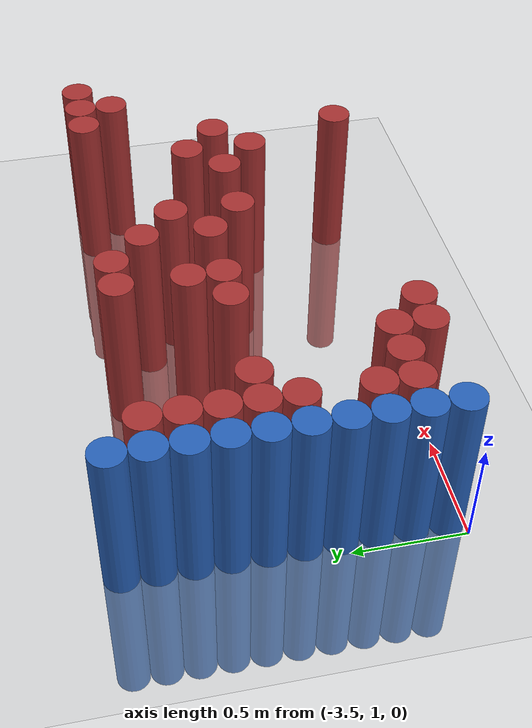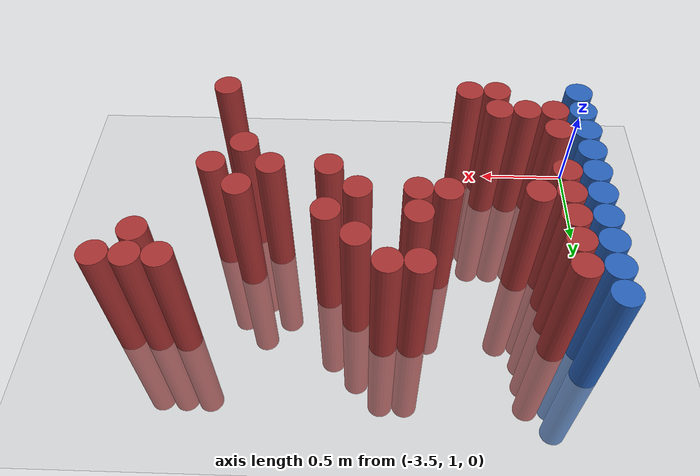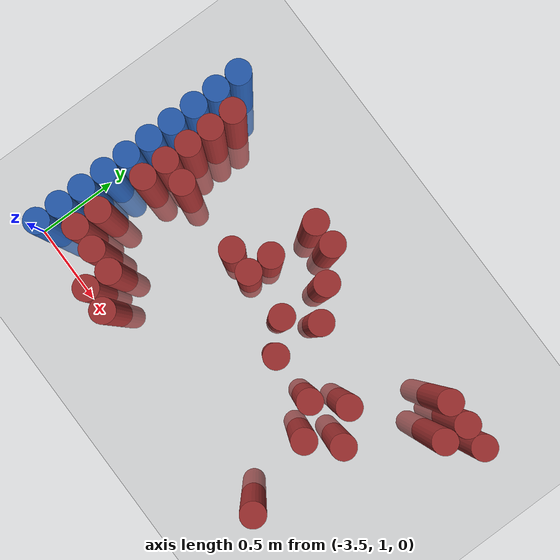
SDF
<sdf version="1.6">
 <world name="default">
  <model name="ground_plane">
   <static>1</static>
   <link name="link">
    <collision name="collision">
     <geometry><plane><normal>0 0 1</normal><size>100 100</size></plane></geometry>
     <surface><friction><ode><mu>100</mu><mu2>50</mu2></ode></friction></surface>
    </collision>
    <visual name="visual">
     <cast_shadows>0</cast_shadows>
     <geometry><plane><normal>0 0 1</normal><size>100 100</size></plane></geometry>
     <material>
      <script><uri>file://media/materials/scripts/gazebo.material</uri><name>Gazebo/Grey</name></script>
     </material>
    </visual>
   </link>
  </model>
  <model name="unit_cylinder_129">
   <static>1</static>
   <pose>-3.425000 1.075000 0.000000 0.000000 0.000000 0.000000</pose>
   <link name="link">
    <inertial>
     <mass>1</mass>
     <inertia><ixx>0.145833</ixx><ixy>0</ixy><ixz>0</ixz><iyy>0.145833</iyy><iyz>0</iyz><izz>0.125</izz></inertia>
    </inertial>
    <collision name="collision">
     <geometry><cylinder><radius>0.075000</radius><length>1.5</length></cylinder></geometry>
    </collision>
    <visual name="visual">
     <geometry><cylinder><radius>0.075000</radius><length>1.5</length></cylinder></geometry>
     <material>
      <ambient>0.152000 0.379000 0.720000 1</ambient>
      <diffuse>0.152000 0.379000 0.720000 1</diffuse>
     </material>
     <material>
      <script><name>Gazebo/Grey</name><uri>file://media/materials/scripts/gazebo.material</uri></script>
     </material>
    </visual>
   </link>
  </model>
  <model name="unit_cylinder_131">
   <static>1</static>
   <pose>-3.425000 1.225000 0.000000 0.000000 0.000000 0.000000</pose>
   <link name="link">
    <inertial>
     <mass>1</mass>
     <inertia><ixx>0.145833</ixx><ixy>0</ixy><ixz>0</ixz><iyy>0.145833</iyy><iyz>0</iyz><izz>0.125</izz></inertia>
    </inertial>
    <collision name="collision">
     <geometry><cylinder><radius>0.075000</radius><length>1.5</length></cylinder></geometry>
    </collision>
    <visual name="visual">
     <geometry><cylinder><radius>0.075000</radius><length>1.5</length></cylinder></geometry>
     <material>
      <ambient>0.152000 0.379000 0.720000 1</ambient>
      <diffuse>0.152000 0.379000 0.720000 1</diffuse>
     </material>
     <material>
      <script><name>Gazebo/Grey</name><uri>file://media/materials/scripts/gazebo.material</uri></script>
     </material>
    </visual>
   </link>
  </model>
  <model name="unit_cylinder_133">
   <static>1</static>
   <pose>-3.425000 1.375000 0.000000 0.000000 0.000000 0.000000</pose>
   <link name="link">
    <inertial>
     <mass>1</mass>
     <inertia><ixx>0.145833</ixx><ixy>0</ixy><ixz>0</ixz><iyy>0.145833</iyy><iyz>0</iyz><izz>0.125</izz></inertia>
    </inertial>
    <collision name="collision">
     <geometry><cylinder><radius>0.075000</radius><length>1.5</length></cylinder></geometry>
    </collision>
    <visual name="visual">
     <geometry><cylinder><radius>0.075000</radius><length>1.5</length></cylinder></geometry>
     <material>
      <ambient>0.152000 0.379000 0.720000 1</ambient>
      <diffuse>0.152000 0.379000 0.720000 1</diffuse>
     </material>
     <material>
      <script><name>Gazebo/Grey</name><uri>file://media/materials/scripts/gazebo.material</uri></script>
     </material>
    </visual>
   </link>
  </model>
  <model name="unit_cylinder_135">
   <static>1</static>
   <pose>-3.425000 1.525000 0.000000 0.000000 0.000000 0.000000</pose>
   <link name="link">
    <inertial>
     <mass>1</mass>
     <inertia><ixx>0.145833</ixx><ixy>0</ixy><ixz>0</ixz><iyy>0.145833</iyy><iyz>0</iyz><izz>0.125</izz></inertia>
    </inertial>
    <collision name="collision">
     <geometry><cylinder><radius>0.075000</radius><length>1.5</length></cylinder></geometry>
    </collision>
    <visual name="visual">
     <geometry><cylinder><radius>0.075000</radius><length>1.5</length></cylinder></geometry>
     <material>
      <ambient>0.152000 0.379000 0.720000 1</ambient>
      <diffuse>0.152000 0.379000 0.720000 1</diffuse>
     </material>
     <material>
      <script><name>Gazebo/Grey</name><uri>file://media/materials/scripts/gazebo.material</uri></script>
     </material>
    </visual>
   </link>
  </model>
  <model name="unit_cylinder_137">
   <static>1</static>
   <pose>-3.425000 1.675000 0.000000 0.000000 0.000000 0.000000</pose>
   <link name="link">
    <inertial>
     <mass>1</mass>
     <inertia><ixx>0.145833</ixx><ixy>0</ixy><ixz>0</ixz><iyy>0.145833</iyy><iyz>0</iyz><izz>0.125</izz></inertia>
    </inertial>
    <collision name="collision">
     <geometry><cylinder><radius>0.075000</radius><length>1.5</length></cylinder></geometry>
    </collision>
    <visual name="visual">
     <geometry><cylinder><radius>0.075000</radius><length>1.5</length></cylinder></geometry>
     <material>
      <ambient>0.152000 0.379000 0.720000 1</ambient>
      <diffuse>0.152000 0.379000 0.720000 1</diffuse>
     </material>
     <material>
      <script><name>Gazebo/Grey</name><uri>file://media/materials/scripts/gazebo.material</uri></script>
     </material>
    </visual>
   </link>
  </model>
  <model name="unit_cylinder_139">
   <static>1</static>
   <pose>-3.425000 1.825000 0.000000 0.000000 0.000000 0.000000</pose>
   <link name="link">
    <inertial>
     <mass>1</mass>
     <inertia><ixx>0.145833</ixx><ixy>0</ixy><ixz>0</ixz><iyy>0.145833</iyy><iyz>0</iyz><izz>0.125</izz></inertia>
    </inertial>
    <collision name="collision">
     <geometry><cylinder><radius>0.075000</radius><length>1.5</length></cylinder></geometry>
    </collision>
    <visual name="visual">
     <geometry><cylinder><radius>0.075000</radius><length>1.5</length></cylinder></geometry>
     <material>
      <ambient>0.152000 0.379000 0.720000 1</ambient>
      <diffuse>0.152000 0.379000 0.720000 1</diffuse>
     </material>
     <material>
      <script><name>Gazebo/Grey</name><uri>file://media/materials/scripts/gazebo.material</uri></script>
     </material>
    </visual>
   </link>
  </model>
  <model name="unit_cylinder_141">
   <static>1</static>
   <pose>-3.425000 1.975000 0.000000 0.000000 0.000000 0.000000</pose>
   <link name="link">
    <inertial>
     <mass>1</mass>
     <inertia><ixx>0.145833</ixx><ixy>0</ixy><ixz>0</ixz><iyy>0.145833</iyy><iyz>0</iyz><izz>0.125</izz></inertia>
    </inertial>
    <collision name="collision">
     <geometry><cylinder><radius>0.075000</radius><length>1.5</length></cylinder></geometry>
    </collision>
    <visual name="visual">
     <geometry><cylinder><radius>0.075000</radius><length>1.5</length></cylinder></geometry>
     <material>
      <ambient>0.152000 0.379000 0.720000 1</ambient>
      <diffuse>0.152000 0.379000 0.720000 1</diffuse>
     </material>
     <material>
      <script><name>Gazebo/Grey</name><uri>file://media/materials/scripts/gazebo.material</uri></script>
     </material>
    </visual>
   </link>
  </model>
  <model name="unit_cylinder_143">
   <static>1</static>
   <pose>-3.425000 2.125000 0.000000 0.000000 0.000000 0.000000</pose>
   <link name="link">
    <inertial>
     <mass>1</mass>
     <inertia><ixx>0.145833</ixx><ixy>0</ixy><ixz>0</ixz><iyy>0.145833</iyy><iyz>0</iyz><izz>0.125</izz></inertia>
    </inertial>
    <collision name="collision">
     <geometry><cylinder><radius>0.075000</radius><length>1.5</length></cylinder></geometry>
    </collision>
    <visual name="visual">
     <geometry><cylinder><radius>0.075000</radius><length>1.5</length></cylinder></geometry>
     <material>
      <ambient>0.152000 0.379000 0.720000 1</ambient>
      <diffuse>0.152000 0.379000 0.720000 1</diffuse>
     </material>
     <material>
      <script><name>Gazebo/Grey</name><uri>file://media/materials/scripts/gazebo.material</uri></script>
     </material>
    </visual>
   </link>
  </model>
  <model name="unit_cylinder_145">
   <static>1</static>
   <pose>-3.425000 2.275000 0.000000 0.000000 0.000000 0.000000</pose>
   <link name="link">
    <inertial>
     <mass>1</mass>
     <inertia><ixx>0.145833</ixx><ixy>0</ixy><ixz>0</ixz><iyy>0.145833</iyy><iyz>0</iyz><izz>0.125</izz></inertia>
    </inertial>
    <collision name="collision">
     <geometry><cylinder><radius>0.075000</radius><length>1.5</length></cylinder></geometry>
    </collision>
    <visual name="visual">
     <geometry><cylinder><radius>0.075000</radius><length>1.5</length></cylinder></geometry>
     <material>
      <ambient>0.152000 0.379000 0.720000 1</ambient>
      <diffuse>0.152000 0.379000 0.720000 1</diffuse>
     </material>
     <material>
      <script><name>Gazebo/Grey</name><uri>file://media/materials/scripts/gazebo.material</uri></script>
     </material>
    </visual>
   </link>
  </model>
  <model name="unit_cylinder_147">
   <static>1</static>
   <pose>-3.425000 2.425000 0.000000 0.000000 0.000000 0.000000</pose>
   <link name="link">
    <inertial>
     <mass>1</mass>
     <inertia><ixx>0.145833</ixx><ixy>0</ixy><ixz>0</ixz><iyy>0.145833</iyy><iyz>0</iyz><izz>0.125</izz></inertia>
    </inertial>
    <collision name="collision">
     <geometry><cylinder><radius>0.075000</radius><length>1.5</length></cylinder></geometry>
    </collision>
    <visual name="visual">
     <geometry><cylinder><radius>0.075000</radius><length>1.5</length></cylinder></geometry>
     <material>
      <ambient>0.152000 0.379000 0.720000 1</ambient>
      <diffuse>0.152000 0.379000 0.720000 1</diffuse>
     </material>
     <material>
      <script><name>Gazebo/Grey</name><uri>file://media/materials/scripts/gazebo.material</uri></script>
     </material>
    </visual>
   </link>
  </model>
  <model name="unit_cylinder_228">
   <static>1</static>
   <pose>-3.425000 1.075000 0.000000 0.000000 0.000000 0.000000</pose>
   <link name="link">
    <inertial>
     <mass>1</mass>
     <inertia><ixx>0.145833</ixx><ixy>0</ixy><ixz>0</ixz><iyy>0.145833</iyy><iyz>0</iyz><izz>0.125</izz></inertia>
    </inertial>
    <collision name="collision">
     <geometry><cylinder><radius>0.075000</radius><length>1.5</length></cylinder></geometry>
    </collision>
    <visual name="visual">
     <geometry><cylinder><radius>0.075000</radius><length>1.5</length></cylinder></geometry>
     <material>
      <ambient>0.152000 0.379000 0.720000 1</ambient>
      <diffuse>0.152000 0.379000 0.720000 1</diffuse>
     </material>
     <material>
      <script><name>Gazebo/Grey</name><uri>file://media/materials/scripts/gazebo.material</uri></script>
     </material>
    </visual>
   </link>
  </model>
  <model name="unit_cylinder_229">
   <static>1</static>
   <pose>-3.425000 1.225000 0.000000 0.000000 0.000000 0.000000</pose>
   <link name="link">
    <inertial>
     <mass>1</mass>
     <inertia><ixx>0.145833</ixx><ixy>0</ixy><ixz>0</ixz><iyy>0.145833</iyy><iyz>0</iyz><izz>0.125</izz></inertia>
    </inertial>
    <collision name="collision">
     <geometry><cylinder><radius>0.075000</radius><length>1.5</length></cylinder></geometry>
    </collision>
    <visual name="visual">
     <geometry><cylinder><radius>0.075000</radius><length>1.5</length></cylinder></geometry>
     <material>
      <ambient>0.152000 0.379000 0.720000 1</ambient>
      <diffuse>0.152000 0.379000 0.720000 1</diffuse>
     </material>
     <material>
      <script><name>Gazebo/Grey</name><uri>file://media/materials/scripts/gazebo.material</uri></script>
     </material>
    </visual>
   </link>
  </model>
  <model name="unit_cylinder_230">
   <static>1</static>
   <pose>-3.425000 1.375000 0.000000 0.000000 0.000000 0.000000</pose>
   <link name="link">
    <inertial>
     <mass>1</mass>
     <inertia><ixx>0.145833</ixx><ixy>0</ixy><ixz>0</ixz><iyy>0.145833</iyy><iyz>0</iyz><izz>0.125</izz></inertia>
    </inertial>
    <collision name="collision">
     <geometry><cylinder><radius>0.075000</radius><length>1.5</length></cylinder></geometry>
    </collision>
    <visual name="visual">
     <geometry><cylinder><radius>0.075000</radius><length>1.5</length></cylinder></geometry>
     <material>
      <ambient>0.152000 0.379000 0.720000 1</ambient>
      <diffuse>0.152000 0.379000 0.720000 1</diffuse>
     </material>
     <material>
      <script><name>Gazebo/Grey</name><uri>file://media/materials/scripts/gazebo.material</uri></script>
     </material>
    </visual>
   </link>
  </model>
  <model name="unit_cylinder_231">
   <static>1</static>
   <pose>-3.425000 1.525000 0.000000 0.000000 0.000000 0.000000</pose>
   <link name="link">
    <inertial>
     <mass>1</mass>
     <inertia><ixx>0.145833</ixx><ixy>0</ixy><ixz>0</ixz><iyy>0.145833</iyy><iyz>0</iyz><izz>0.125</izz></inertia>
    </inertial>
    <collision name="collision">
     <geometry><cylinder><radius>0.075000</radius><length>1.5</length></cylinder></geometry>
    </collision>
    <visual name="visual">
     <geometry><cylinder><radius>0.075000</radius><length>1.5</length></cylinder></geometry>
     <material>
      <ambient>0.152000 0.379000 0.720000 1</ambient>
      <diffuse>0.152000 0.379000 0.720000 1</diffuse>
     </material>
     <material>
      <script><name>Gazebo/Grey</name><uri>file://media/materials/scripts/gazebo.material</uri></script>
     </material>
    </visual>
   </link>
  </model>
  <model name="unit_cylinder_232">
   <static>1</static>
   <pose>-3.425000 1.675000 0.000000 0.000000 0.000000 0.000000</pose>
   <link name="link">
    <inertial>
     <mass>1</mass>
     <inertia><ixx>0.145833</ixx><ixy>0</ixy><ixz>0</ixz><iyy>0.145833</iyy><iyz>0</iyz><izz>0.125</izz></inertia>
    </inertial>
    <collision name="collision">
     <geometry><cylinder><radius>0.075000</radius><length>1.5</length></cylinder></geometry>
    </collision>
    <visual name="visual">
     <geometry><cylinder><radius>0.075000</radius><length>1.5</length></cylinder></geometry>
     <material>
      <ambient>0.152000 0.379000 0.720000 1</ambient>
      <diffuse>0.152000 0.379000 0.720000 1</diffuse>
     </material>
     <material>
      <script><name>Gazebo/Grey</name><uri>file://media/materials/scripts/gazebo.material</uri></script>
     </material>
    </visual>
   </link>
  </model>
  <model name="unit_cylinder_233">
   <static>1</static>
   <pose>-3.425000 1.825000 0.000000 0.000000 0.000000 0.000000</pose>
   <link name="link">
    <inertial>
     <mass>1</mass>
     <inertia><ixx>0.145833</ixx><ixy>0</ixy><ixz>0</ixz><iyy>0.145833</iyy><iyz>0</iyz><izz>0.125</izz></inertia>
    </inertial>
    <collision name="collision">
     <geometry><cylinder><radius>0.075000</radius><length>1.5</length></cylinder></geometry>
    </collision>
    <visual name="visual">
     <geometry><cylinder><radius>0.075000</radius><length>1.5</length></cylinder></geometry>
     <material>
      <ambient>0.152000 0.379000 0.720000 1</ambient>
      <diffuse>0.152000 0.379000 0.720000 1</diffuse>
     </material>
     <material>
      <script><name>Gazebo/Grey</name><uri>file://media/materials/scripts/gazebo.material</uri></script>
     </material>
    </visual>
   </link>
  </model>
  <model name="unit_cylinder_234">
   <static>1</static>
   <pose>-3.425000 1.975000 0.000000 0.000000 0.000000 0.000000</pose>
   <link name="link">
    <inertial>
     <mass>1</mass>
     <inertia><ixx>0.145833</ixx><ixy>0</ixy><ixz>0</ixz><iyy>0.145833</iyy><iyz>0</iyz><izz>0.125</izz></inertia>
    </inertial>
    <collision name="collision">
     <geometry><cylinder><radius>0.075000</radius><length>1.5</length></cylinder></geometry>
    </collision>
    <visual name="visual">
     <geometry><cylinder><radius>0.075000</radius><length>1.5</length></cylinder></geometry>
     <material>
      <ambient>0.152000 0.379000 0.720000 1</ambient>
      <diffuse>0.152000 0.379000 0.720000 1</diffuse>
     </material>
     <material>
      <script><name>Gazebo/Grey</name><uri>file://media/materials/scripts/gazebo.material</uri></script>
     </material>
    </visual>
   </link>
  </model>
  <model name="unit_cylinder_235">
   <static>1</static>
   <pose>-3.425000 2.125000 0.000000 0.000000 0.000000 0.000000</pose>
   <link name="link">
    <inertial>
     <mass>1</mass>
     <inertia><ixx>0.145833</ixx><ixy>0</ixy><ixz>0</ixz><iyy>0.145833</iyy><iyz>0</iyz><izz>0.125</izz></inertia>
    </inertial>
    <collision name="collision">
     <geometry><cylinder><radius>0.075000</radius><length>1.5</length></cylinder></geometry>
    </collision>
    <visual name="visual">
     <geometry><cylinder><radius>0.075000</radius><length>1.5</length></cylinder></geometry>
     <material>
      <ambient>0.152000 0.379000 0.720000 1</ambient>
      <diffuse>0.152000 0.379000 0.720000 1</diffuse>
     </material>
     <material>
      <script><name>Gazebo/Grey</name><uri>file://media/materials/scripts/gazebo.material</uri></script>
     </material>
    </visual>
   </link>
  </model>
  <model name="unit_cylinder_236">
   <static>1</static>
   <pose>-3.425000 2.275000 0.000000 0.000000 0.000000 0.000000</pose>
   <link name="link">
    <inertial>
     <mass>1</mass>
     <inertia><ixx>0.145833</ixx><ixy>0</ixy><ixz>0</ixz><iyy>0.145833</iyy><iyz>0</iyz><izz>0.125</izz></inertia>
    </inertial>
    <collision name="collision">
     <geometry><cylinder><radius>0.075000</radius><length>1.5</length></cylinder></geometry>
    </collision>
    <visual name="visual">
     <geometry><cylinder><radius>0.075000</radius><length>1.5</length></cylinder></geometry>
     <material>
      <ambient>0.152000 0.379000 0.720000 1</ambient>
      <diffuse>0.152000 0.379000 0.720000 1</diffuse>
     </material>
     <material>
      <script><name>Gazebo/Grey</name><uri>file://media/materials/scripts/gazebo.material</uri></script>
     </material>
    </visual>
   </link>
  </model>
  <model name="unit_cylinder_237">
   <static>1</static>
   <pose>-3.425000 2.425000 0.000000 0.000000 0.000000 0.000000</pose>
   <link name="link">
    <inertial>
     <mass>1</mass>
     <inertia><ixx>0.145833</ixx><ixy>0</ixy><ixz>0</ixz><iyy>0.145833</iyy><iyz>0</iyz><izz>0.125</izz></inertia>
    </inertial>
    <collision name="collision">
     <geometry><cylinder><radius>0.075000</radius><length>1.5</length></cylinder></geometry>
    </collision>
    <visual name="visual">
     <geometry><cylinder><radius>0.075000</radius><length>1.5</length></cylinder></geometry>
     <material>
      <ambient>0.152000 0.379000 0.720000 1</ambient>
      <diffuse>0.152000 0.379000 0.720000 1</diffuse>
     </material>
     <material>
      <script><name>Gazebo/Grey</name><uri>file://media/materials/scripts/gazebo.material</uri></script>
     </material>
    </visual>
   </link>
  </model>
  <model name="unit_cylinder_270">
   <static>1</static>
   <pose>-3.275000 1.225000 0.000000 0.000000 0.000000 0.000000</pose>
   <link name="link">
    <inertial>
     <mass>1</mass>
     <inertia><ixx>0.145833</ixx><ixy>0</ixy><ixz>0</ixz><iyy>0.145833</iyy><iyz>0</iyz><izz>0.125</izz></inertia>
    </inertial>
    <collision name="collision">
     <geometry><cylinder><radius>0.075000</radius><length>1.5</length></cylinder></geometry>
    </collision>
    <visual name="visual">
     <geometry><cylinder><radius>0.075000</radius><length>1.5</length></cylinder></geometry>
     <material>
      <ambient>0.648000 0.192000 0.192000 1</ambient>
      <diffuse>0.648000 0.192000 0.192000 1</diffuse>
     </material>
     <material>
      <script><name>Gazebo/Grey</name><uri>file://media/materials/scripts/gazebo.material</uri></script>
     </material>
    </visual>
   </link>
  </model>
  <model name="unit_cylinder_271">
   <static>1</static>
   <pose>-3.275000 1.375000 0.000000 0.000000 0.000000 0.000000</pose>
   <link name="link">
    <inertial>
     <mass>1</mass>
     <inertia><ixx>0.145833</ixx><ixy>0</ixy><ixz>0</ixz><iyy>0.145833</iyy><iyz>0</iyz><izz>0.125</izz></inertia>
    </inertial>
    <collision name="collision">
     <geometry><cylinder><radius>0.075000</radius><length>1.5</length></cylinder></geometry>
    </collision>
    <visual name="visual">
     <geometry><cylinder><radius>0.075000</radius><length>1.5</length></cylinder></geometry>
     <material>
      <ambient>0.648000 0.192000 0.192000 1</ambient>
      <diffuse>0.648000 0.192000 0.192000 1</diffuse>
     </material>
     <material>
      <script><name>Gazebo/Grey</name><uri>file://media/materials/scripts/gazebo.material</uri></script>
     </material>
    </visual>
   </link>
  </model>
  <model name="unit_cylinder_272">
   <static>1</static>
   <pose>-3.275000 1.675000 0.000000 0.000000 0.000000 0.000000</pose>
   <link name="link">
    <inertial>
     <mass>1</mass>
     <inertia><ixx>0.145833</ixx><ixy>0</ixy><ixz>0</ixz><iyy>0.145833</iyy><iyz>0</iyz><izz>0.125</izz></inertia>
    </inertial>
    <collision name="collision">
     <geometry><cylinder><radius>0.075000</radius><length>1.5</length></cylinder></geometry>
    </collision>
    <visual name="visual">
     <geometry><cylinder><radius>0.075000</radius><length>1.5</length></cylinder></geometry>
     <material>
      <ambient>0.648000 0.192000 0.192000 1</ambient>
      <diffuse>0.648000 0.192000 0.192000 1</diffuse>
     </material>
     <material>
      <script><name>Gazebo/Grey</name><uri>file://media/materials/scripts/gazebo.material</uri></script>
     </material>
    </visual>
   </link>
  </model>
  <model name="unit_cylinder_273">
   <static>1</static>
   <pose>-3.275000 1.825000 0.000000 0.000000 0.000000 0.000000</pose>
   <link name="link">
    <inertial>
     <mass>1</mass>
     <inertia><ixx>0.145833</ixx><ixy>0</ixy><ixz>0</ixz><iyy>0.145833</iyy><iyz>0</iyz><izz>0.125</izz></inertia>
    </inertial>
    <collision name="collision">
     <geometry><cylinder><radius>0.075000</radius><length>1.5</length></cylinder></geometry>
    </collision>
    <visual name="visual">
     <geometry><cylinder><radius>0.075000</radius><length>1.5</length></cylinder></geometry>
     <material>
      <ambient>0.648000 0.192000 0.192000 1</ambient>
      <diffuse>0.648000 0.192000 0.192000 1</diffuse>
     </material>
     <material>
      <script><name>Gazebo/Grey</name><uri>file://media/materials/scripts/gazebo.material</uri></script>
     </material>
    </visual>
   </link>
  </model>
  <model name="unit_cylinder_274">
   <static>1</static>
   <pose>-3.275000 1.975000 0.000000 0.000000 0.000000 0.000000</pose>
   <link name="link">
    <inertial>
     <mass>1</mass>
     <inertia><ixx>0.145833</ixx><ixy>0</ixy><ixz>0</ixz><iyy>0.145833</iyy><iyz>0</iyz><izz>0.125</izz></inertia>
    </inertial>
    <collision name="collision">
     <geometry><cylinder><radius>0.075000</radius><length>1.5</length></cylinder></geometry>
    </collision>
    <visual name="visual">
     <geometry><cylinder><radius>0.075000</radius><length>1.5</length></cylinder></geometry>
     <material>
      <ambient>0.648000 0.192000 0.192000 1</ambient>
      <diffuse>0.648000 0.192000 0.192000 1</diffuse>
     </material>
     <material>
      <script><name>Gazebo/Grey</name><uri>file://media/materials/scripts/gazebo.material</uri></script>
     </material>
    </visual>
   </link>
  </model>
  <model name="unit_cylinder_275">
   <static>1</static>
   <pose>-3.275000 2.125000 0.000000 0.000000 0.000000 0.000000</pose>
   <link name="link">
    <inertial>
     <mass>1</mass>
     <inertia><ixx>0.145833</ixx><ixy>0</ixy><ixz>0</ixz><iyy>0.145833</iyy><iyz>0</iyz><izz>0.125</izz></inertia>
    </inertial>
    <collision name="collision">
     <geometry><cylinder><radius>0.075000</radius><length>1.5</length></cylinder></geometry>
    </collision>
    <visual name="visual">
     <geometry><cylinder><radius>0.075000</radius><length>1.5</length></cylinder></geometry>
     <material>
      <ambient>0.648000 0.192000 0.192000 1</ambient>
      <diffuse>0.648000 0.192000 0.192000 1</diffuse>
     </material>
     <material>
      <script><name>Gazebo/Grey</name><uri>file://media/materials/scripts/gazebo.material</uri></script>
     </material>
    </visual>
   </link>
  </model>
  <model name="unit_cylinder_276">
   <static>1</static>
   <pose>-3.275000 2.275000 0.000000 0.000000 0.000000 0.000000</pose>
   <link name="link">
    <inertial>
     <mass>1</mass>
     <inertia><ixx>0.145833</ixx><ixy>0</ixy><ixz>0</ixz><iyy>0.145833</iyy><iyz>0</iyz><izz>0.125</izz></inertia>
    </inertial>
    <collision name="collision">
     <geometry><cylinder><radius>0.075000</radius><length>1.5</length></cylinder></geometry>
    </collision>
    <visual name="visual">
     <geometry><cylinder><radius>0.075000</radius><length>1.5</length></cylinder></geometry>
     <material>
      <ambient>0.648000 0.192000 0.192000 1</ambient>
      <diffuse>0.648000 0.192000 0.192000 1</diffuse>
     </material>
     <material>
      <script><name>Gazebo/Grey</name><uri>file://media/materials/scripts/gazebo.material</uri></script>
     </material>
    </visual>
   </link>
  </model>
  <model name="unit_cylinder_287">
   <static>1</static>
   <pose>-3.125000 1.225000 0.000000 0.000000 0.000000 0.000000</pose>
   <link name="link">
    <inertial>
     <mass>1</mass>
     <inertia><ixx>0.145833</ixx><ixy>0</ixy><ixz>0</ixz><iyy>0.145833</iyy><iyz>0</iyz><izz>0.125</izz></inertia>
    </inertial>
    <collision name="collision">
     <geometry><cylinder><radius>0.075000</radius><length>1.5</length></cylinder></geometry>
    </collision>
    <visual name="visual">
     <geometry><cylinder><radius>0.075000</radius><length>1.5</length></cylinder></geometry>
     <material>
      <ambient>0.648000 0.192000 0.192000 1</ambient>
      <diffuse>0.648000 0.192000 0.192000 1</diffuse>
     </material>
     <material>
      <script><name>Gazebo/Grey</name><uri>file://media/materials/scripts/gazebo.material</uri></script>
     </material>
    </visual>
   </link>
  </model>
  <model name="unit_cylinder_288">
   <static>1</static>
   <pose>-3.125000 1.825000 0.000000 0.000000 0.000000 0.000000</pose>
   <link name="link">
    <inertial>
     <mass>1</mass>
     <inertia><ixx>0.145833</ixx><ixy>0</ixy><ixz>0</ixz><iyy>0.145833</iyy><iyz>0</iyz><izz>0.125</izz></inertia>
    </inertial>
    <collision name="collision">
     <geometry><cylinder><radius>0.075000</radius><length>1.5</length></cylinder></geometry>
    </collision>
    <visual name="visual">
     <geometry><cylinder><radius>0.075000</radius><length>1.5</length></cylinder></geometry>
     <material>
      <ambient>0.648000 0.192000 0.192000 1</ambient>
      <diffuse>0.648000 0.192000 0.192000 1</diffuse>
     </material>
     <material>
      <script><name>Gazebo/Grey</name><uri>file://media/materials/scripts/gazebo.material</uri></script>
     </material>
    </visual>
   </link>
  </model>
  <model name="unit_cylinder_291">
   <static>1</static>
   <pose>-2.975000 1.075000 0.000000 0.000000 0.000000 0.000000</pose>
   <link name="link">
    <inertial>
     <mass>1</mass>
     <inertia><ixx>0.145833</ixx><ixy>0</ixy><ixz>0</ixz><iyy>0.145833</iyy><iyz>0</iyz><izz>0.125</izz></inertia>
    </inertial>
    <collision name="collision">
     <geometry><cylinder><radius>0.075000</radius><length>1.5</length></cylinder></geometry>
    </collision>
    <visual name="visual">
     <geometry><cylinder><radius>0.075000</radius><length>1.5</length></cylinder></geometry>
     <material>
      <ambient>0.648000 0.192000 0.192000 1</ambient>
      <diffuse>0.648000 0.192000 0.192000 1</diffuse>
     </material>
     <material>
      <script><name>Gazebo/Grey</name><uri>file://media/materials/scripts/gazebo.material</uri></script>
     </material>
    </visual>
   </link>
  </model>
  <model name="unit_cylinder_292">
   <static>1</static>
   <pose>-2.975000 1.225000 0.000000 0.000000 0.000000 0.000000</pose>
   <link name="link">
    <inertial>
     <mass>1</mass>
     <inertia><ixx>0.145833</ixx><ixy>0</ixy><ixz>0</ixz><iyy>0.145833</iyy><iyz>0</iyz><izz>0.125</izz></inertia>
    </inertial>
    <collision name="collision">
     <geometry><cylinder><radius>0.075000</radius><length>1.5</length></cylinder></geometry>
    </collision>
    <visual name="visual">
     <geometry><cylinder><radius>0.075000</radius><length>1.5</length></cylinder></geometry>
     <material>
      <ambient>0.648000 0.192000 0.192000 1</ambient>
      <diffuse>0.648000 0.192000 0.192000 1</diffuse>
     </material>
     <material>
      <script><name>Gazebo/Grey</name><uri>file://media/materials/scripts/gazebo.material</uri></script>
     </material>
    </visual>
   </link>
  </model>
  <model name="unit_cylinder_297">
   <static>1</static>
   <pose>-2.825000 1.075000 0.000000 0.000000 0.000000 0.000000</pose>
   <link name="link">
    <inertial>
     <mass>1</mass>
     <inertia><ixx>0.145833</ixx><ixy>0</ixy><ixz>0</ixz><iyy>0.145833</iyy><iyz>0</iyz><izz>0.125</izz></inertia>
    </inertial>
    <collision name="collision">
     <geometry><cylinder><radius>0.075000</radius><length>1.5</length></cylinder></geometry>
    </collision>
    <visual name="visual">
     <geometry><cylinder><radius>0.075000</radius><length>1.5</length></cylinder></geometry>
     <material>
      <ambient>0.648000 0.192000 0.192000 1</ambient>
      <diffuse>0.648000 0.192000 0.192000 1</diffuse>
     </material>
     <material>
      <script><name>Gazebo/Grey</name><uri>file://media/materials/scripts/gazebo.material</uri></script>
     </material>
    </visual>
   </link>
  </model>
  <model name="unit_cylinder_303">
   <static>1</static>
   <pose>-2.675000 1.825000 0.000000 0.000000 0.000000 0.000000</pose>
   <link name="link">
    <inertial>
     <mass>1</mass>
     <inertia><ixx>0.145833</ixx><ixy>0</ixy><ixz>0</ixz><iyy>0.145833</iyy><iyz>0</iyz><izz>0.125</izz></inertia>
    </inertial>
    <collision name="collision">
     <geometry><cylinder><radius>0.075000</radius><length>1.5</length></cylinder></geometry>
    </collision>
    <visual name="visual">
     <geometry><cylinder><radius>0.075000</radius><length>1.5</length></cylinder></geometry>
     <material>
      <ambient>0.648000 0.192000 0.192000 1</ambient>
      <diffuse>0.648000 0.192000 0.192000 1</diffuse>
     </material>
     <material>
      <script><name>Gazebo/Grey</name><uri>file://media/materials/scripts/gazebo.material</uri></script>
     </material>
    </visual>
   </link>
  </model>
  <model name="unit_cylinder_307">
   <static>1</static>
   <pose>-2.525000 1.825000 0.000000 0.000000 0.000000 0.000000</pose>
   <link name="link">
    <inertial>
     <mass>1</mass>
     <inertia><ixx>0.145833</ixx><ixy>0</ixy><ixz>0</ixz><iyy>0.145833</iyy><iyz>0</iyz><izz>0.125</izz></inertia>
    </inertial>
    <collision name="collision">
     <geometry><cylinder><radius>0.075000</radius><length>1.5</length></cylinder></geometry>
    </collision>
    <visual name="visual">
     <geometry><cylinder><radius>0.075000</radius><length>1.5</length></cylinder></geometry>
     <material>
      <ambient>0.648000 0.192000 0.192000 1</ambient>
      <diffuse>0.648000 0.192000 0.192000 1</diffuse>
     </material>
     <material>
      <script><name>Gazebo/Grey</name><uri>file://media/materials/scripts/gazebo.material</uri></script>
     </material>
    </visual>
   </link>
  </model>
  <model name="unit_cylinder_308">
   <static>1</static>
   <pose>-2.525000 1.975000 0.000000 0.000000 0.000000 0.000000</pose>
   <link name="link">
    <inertial>
     <mass>1</mass>
     <inertia><ixx>0.145833</ixx><ixy>0</ixy><ixz>0</ixz><iyy>0.145833</iyy><iyz>0</iyz><izz>0.125</izz></inertia>
    </inertial>
    <collision name="collision">
     <geometry><cylinder><radius>0.075000</radius><length>1.5</length></cylinder></geometry>
    </collision>
    <visual name="visual">
     <geometry><cylinder><radius>0.075000</radius><length>1.5</length></cylinder></geometry>
     <material>
      <ambient>0.648000 0.192000 0.192000 1</ambient>
      <diffuse>0.648000 0.192000 0.192000 1</diffuse>
     </material>
     <material>
      <script><name>Gazebo/Grey</name><uri>file://media/materials/scripts/gazebo.material</uri></script>
     </material>
    </visual>
   </link>
  </model>
  <model name="unit_cylinder_309">
   <static>1</static>
   <pose>-2.525000 2.275000 0.000000 0.000000 0.000000 0.000000</pose>
   <link name="link">
    <inertial>
     <mass>1</mass>
     <inertia><ixx>0.145833</ixx><ixy>0</ixy><ixz>0</ixz><iyy>0.145833</iyy><iyz>0</iyz><izz>0.125</izz></inertia>
    </inertial>
    <collision name="collision">
     <geometry><cylinder><radius>0.075000</radius><length>1.5</length></cylinder></geometry>
    </collision>
    <visual name="visual">
     <geometry><cylinder><radius>0.075000</radius><length>1.5</length></cylinder></geometry>
     <material>
      <ambient>0.648000 0.192000 0.192000 1</ambient>
      <diffuse>0.648000 0.192000 0.192000 1</diffuse>
     </material>
     <material>
      <script><name>Gazebo/Grey</name><uri>file://media/materials/scripts/gazebo.material</uri></script>
     </material>
    </visual>
   </link>
  </model>
  <model name="unit_cylinder_312">
   <static>1</static>
   <pose>-2.375000 2.275000 0.000000 0.000000 0.000000 0.000000</pose>
   <link name="link">
    <inertial>
     <mass>1</mass>
     <inertia><ixx>0.145833</ixx><ixy>0</ixy><ixz>0</ixz><iyy>0.145833</iyy><iyz>0</iyz><izz>0.125</izz></inertia>
    </inertial>
    <collision name="collision">
     <geometry><cylinder><radius>0.075000</radius><length>1.5</length></cylinder></geometry>
    </collision>
    <visual name="visual">
     <geometry><cylinder><radius>0.075000</radius><length>1.5</length></cylinder></geometry>
     <material>
      <ambient>0.648000 0.192000 0.192000 1</ambient>
      <diffuse>0.648000 0.192000 0.192000 1</diffuse>
     </material>
     <material>
      <script><name>Gazebo/Grey</name><uri>file://media/materials/scripts/gazebo.material</uri></script>
     </material>
    </visual>
   </link>
  </model>
  <model name="unit_cylinder_315">
   <static>1</static>
   <pose>-2.225000 1.825000 0.000000 0.000000 0.000000 0.000000</pose>
   <link name="link">
    <inertial>
     <mass>1</mass>
     <inertia><ixx>0.145833</ixx><ixy>0</ixy><ixz>0</ixz><iyy>0.145833</iyy><iyz>0</iyz><izz>0.125</izz></inertia>
    </inertial>
    <collision name="collision">
     <geometry><cylinder><radius>0.075000</radius><length>1.5</length></cylinder></geometry>
    </collision>
    <visual name="visual">
     <geometry><cylinder><radius>0.075000</radius><length>1.5</length></cylinder></geometry>
     <material>
      <ambient>0.648000 0.192000 0.192000 1</ambient>
      <diffuse>0.648000 0.192000 0.192000 1</diffuse>
     </material>
     <material>
      <script><name>Gazebo/Grey</name><uri>file://media/materials/scripts/gazebo.material</uri></script>
     </material>
    </visual>
   </link>
  </model>
  <model name="unit_cylinder_316">
   <static>1</static>
   <pose>-2.225000 2.125000 0.000000 0.000000 0.000000 0.000000</pose>
   <link name="link">
    <inertial>
     <mass>1</mass>
     <inertia><ixx>0.145833</ixx><ixy>0</ixy><ixz>0</ixz><iyy>0.145833</iyy><iyz>0</iyz><izz>0.125</izz></inertia>
    </inertial>
    <collision name="collision">
     <geometry><cylinder><radius>0.075000</radius><length>1.5</length></cylinder></geometry>
    </collision>
    <visual name="visual">
     <geometry><cylinder><radius>0.075000</radius><length>1.5</length></cylinder></geometry>
     <material>
      <ambient>0.648000 0.192000 0.192000 1</ambient>
      <diffuse>0.648000 0.192000 0.192000 1</diffuse>
     </material>
     <material>
      <script><name>Gazebo/Grey</name><uri>file://media/materials/scripts/gazebo.material</uri></script>
     </material>
    </visual>
   </link>
  </model>
  <model name="unit_cylinder_318">
   <static>1</static>
   <pose>-2.075000 1.675000 0.000000 0.000000 0.000000 0.000000</pose>
   <link name="link">
    <inertial>
     <mass>1</mass>
     <inertia><ixx>0.145833</ixx><ixy>0</ixy><ixz>0</ixz><iyy>0.145833</iyy><iyz>0</iyz><izz>0.125</izz></inertia>
    </inertial>
    <collision name="collision">
     <geometry><cylinder><radius>0.075000</radius><length>1.5</length></cylinder></geometry>
    </collision>
    <visual name="visual">
     <geometry><cylinder><radius>0.075000</radius><length>1.5</length></cylinder></geometry>
     <material>
      <ambient>0.648000 0.192000 0.192000 1</ambient>
      <diffuse>0.648000 0.192000 0.192000 1</diffuse>
     </material>
     <material>
      <script><name>Gazebo/Grey</name><uri>file://media/materials/scripts/gazebo.material</uri></script>
     </material>
    </visual>
   </link>
  </model>
  <model name="unit_cylinder_319">
   <static>1</static>
   <pose>-2.075000 1.975000 0.000000 0.000000 0.000000 0.000000</pose>
   <link name="link">
    <inertial>
     <mass>1</mass>
     <inertia><ixx>0.145833</ixx><ixy>0</ixy><ixz>0</ixz><iyy>0.145833</iyy><iyz>0</iyz><izz>0.125</izz></inertia>
    </inertial>
    <collision name="collision">
     <geometry><cylinder><radius>0.075000</radius><length>1.5</length></cylinder></geometry>
    </collision>
    <visual name="visual">
     <geometry><cylinder><radius>0.075000</radius><length>1.5</length></cylinder></geometry>
     <material>
      <ambient>0.648000 0.192000 0.192000 1</ambient>
      <diffuse>0.648000 0.192000 0.192000 1</diffuse>
     </material>
     <material>
      <script><name>Gazebo/Grey</name><uri>file://media/materials/scripts/gazebo.material</uri></script>
     </material>
    </visual>
   </link>
  </model>
  <model name="unit_cylinder_326">
   <static>1</static>
   <pose>-1.775000 1.675000 0.000000 0.000000 0.000000 0.000000</pose>
   <link name="link">
    <inertial>
     <mass>1</mass>
     <inertia><ixx>0.145833</ixx><ixy>0</ixy><ixz>0</ixz><iyy>0.145833</iyy><iyz>0</iyz><izz>0.125</izz></inertia>
    </inertial>
    <collision name="collision">
     <geometry><cylinder><radius>0.075000</radius><length>1.5</length></cylinder></geometry>
    </collision>
    <visual name="visual">
     <geometry><cylinder><radius>0.075000</radius><length>1.5</length></cylinder></geometry>
     <material>
      <ambient>0.648000 0.192000 0.192000 1</ambient>
      <diffuse>0.648000 0.192000 0.192000 1</diffuse>
     </material>
     <material>
      <script><name>Gazebo/Grey</name><uri>file://media/materials/scripts/gazebo.material</uri></script>
     </material>
    </visual>
   </link>
  </model>
  <model name="unit_cylinder_332">
   <static>1</static>
   <pose>-1.625000 1.525000 0.000000 0.000000 0.000000 0.000000</pose>
   <link name="link">
    <inertial>
     <mass>1</mass>
     <inertia><ixx>0.145833</ixx><ixy>0</ixy><ixz>0</ixz><iyy>0.145833</iyy><iyz>0</iyz><izz>0.125</izz></inertia>
    </inertial>
    <collision name="collision">
     <geometry><cylinder><radius>0.075000</radius><length>1.5</length></cylinder></geometry>
    </collision>
    <visual name="visual">
     <geometry><cylinder><radius>0.075000</radius><length>1.5</length></cylinder></geometry>
     <material>
      <ambient>0.648000 0.192000 0.192000 1</ambient>
      <diffuse>0.648000 0.192000 0.192000 1</diffuse>
     </material>
     <material>
      <script><name>Gazebo/Grey</name><uri>file://media/materials/scripts/gazebo.material</uri></script>
     </material>
    </visual>
   </link>
  </model>
  <model name="unit_cylinder_333">
   <static>1</static>
   <pose>-1.625000 1.825000 0.000000 0.000000 0.000000 0.000000</pose>
   <link name="link">
    <inertial>
     <mass>1</mass>
     <inertia><ixx>0.145833</ixx><ixy>0</ixy><ixz>0</ixz><iyy>0.145833</iyy><iyz>0</iyz><izz>0.125</izz></inertia>
    </inertial>
    <collision name="collision">
     <geometry><cylinder><radius>0.075000</radius><length>1.5</length></cylinder></geometry>
    </collision>
    <visual name="visual">
     <geometry><cylinder><radius>0.075000</radius><length>1.5</length></cylinder></geometry>
     <material>
      <ambient>0.648000 0.192000 0.192000 1</ambient>
      <diffuse>0.648000 0.192000 0.192000 1</diffuse>
     </material>
     <material>
      <script><name>Gazebo/Grey</name><uri>file://media/materials/scripts/gazebo.material</uri></script>
     </material>
    </visual>
   </link>
  </model>
  <model name="unit_cylinder_341">
   <static>1</static>
   <pose>-1.475000 1.075000 0.000000 0.000000 0.000000 0.000000</pose>
   <link name="link">
    <inertial>
     <mass>1</mass>
     <inertia><ixx>0.145833</ixx><ixy>0</ixy><ixz>0</ixz><iyy>0.145833</iyy><iyz>0</iyz><izz>0.125</izz></inertia>
    </inertial>
    <collision name="collision">
     <geometry><cylinder><radius>0.075000</radius><length>1.5</length></cylinder></geometry>
    </collision>
    <visual name="visual">
     <geometry><cylinder><radius>0.075000</radius><length>1.5</length></cylinder></geometry>
     <material>
      <ambient>0.648000 0.192000 0.192000 1</ambient>
      <diffuse>0.648000 0.192000 0.192000 1</diffuse>
     </material>
     <material>
      <script><name>Gazebo/Grey</name><uri>file://media/materials/scripts/gazebo.material</uri></script>
     </material>
    </visual>
   </link>
  </model>
  <model name="unit_cylinder_342">
   <static>1</static>
   <pose>-1.475000 1.675000 0.000000 0.000000 0.000000 0.000000</pose>
   <link name="link">
    <inertial>
     <mass>1</mass>
     <inertia><ixx>0.145833</ixx><ixy>0</ixy><ixz>0</ixz><iyy>0.145833</iyy><iyz>0</iyz><izz>0.125</izz></inertia>
    </inertial>
    <collision name="collision">
     <geometry><cylinder><radius>0.075000</radius><length>1.5</length></cylinder></geometry>
    </collision>
    <visual name="visual">
     <geometry><cylinder><radius>0.075000</radius><length>1.5</length></cylinder></geometry>
     <material>
      <ambient>0.648000 0.192000 0.192000 1</ambient>
      <diffuse>0.648000 0.192000 0.192000 1</diffuse>
     </material>
     <material>
      <script><name>Gazebo/Grey</name><uri>file://media/materials/scripts/gazebo.material</uri></script>
     </material>
    </visual>
   </link>
  </model>
  <model name="unit_cylinder_348">
   <static>1</static>
   <pose>-1.325000 2.275000 0.000000 0.000000 0.000000 0.000000</pose>
   <link name="link">
    <inertial>
     <mass>1</mass>
     <inertia><ixx>0.145833</ixx><ixy>0</ixy><ixz>0</ixz><iyy>0.145833</iyy><iyz>0</iyz><izz>0.125</izz></inertia>
    </inertial>
    <collision name="collision">
     <geometry><cylinder><radius>0.075000</radius><length>1.5</length></cylinder></geometry>
    </collision>
    <visual name="visual">
     <geometry><cylinder><radius>0.075000</radius><length>1.5</length></cylinder></geometry>
     <material>
      <ambient>0.648000 0.192000 0.192000 1</ambient>
      <diffuse>0.648000 0.192000 0.192000 1</diffuse>
     </material>
     <material>
      <script><name>Gazebo/Grey</name><uri>file://media/materials/scripts/gazebo.material</uri></script>
     </material>
    </visual>
   </link>
  </model>
  <model name="unit_cylinder_351">
   <static>1</static>
   <pose>-1.175000 2.125000 0.000000 0.000000 0.000000 0.000000</pose>
   <link name="link">
    <inertial>
     <mass>1</mass>
     <inertia><ixx>0.145833</ixx><ixy>0</ixy><ixz>0</ixz><iyy>0.145833</iyy><iyz>0</iyz><izz>0.125</izz></inertia>
    </inertial>
    <collision name="collision">
     <geometry><cylinder><radius>0.075000</radius><length>1.5</length></cylinder></geometry>
    </collision>
    <visual name="visual">
     <geometry><cylinder><radius>0.075000</radius><length>1.5</length></cylinder></geometry>
     <material>
      <ambient>0.648000 0.192000 0.192000 1</ambient>
      <diffuse>0.648000 0.192000 0.192000 1</diffuse>
     </material>
     <material>
      <script><name>Gazebo/Grey</name><uri>file://media/materials/scripts/gazebo.material</uri></script>
     </material>
    </visual>
   </link>
  </model>
  <model name="unit_cylinder_352">
   <static>1</static>
   <pose>-1.175000 2.275000 0.000000 0.000000 0.000000 0.000000</pose>
   <link name="link">
    <inertial>
     <mass>1</mass>
     <inertia><ixx>0.145833</ixx><ixy>0</ixy><ixz>0</ixz><iyy>0.145833</iyy><iyz>0</iyz><izz>0.125</izz></inertia>
    </inertial>
    <collision name="collision">
     <geometry><cylinder><radius>0.075000</radius><length>1.5</length></cylinder></geometry>
    </collision>
    <visual name="visual">
     <geometry><cylinder><radius>0.075000</radius><length>1.5</length></cylinder></geometry>
     <material>
      <ambient>0.648000 0.192000 0.192000 1</ambient>
      <diffuse>0.648000 0.192000 0.192000 1</diffuse>
     </material>
     <material>
      <script><name>Gazebo/Grey</name><uri>file://media/materials/scripts/gazebo.material</uri></script>
     </material>
    </visual>
   </link>
  </model>
  <model name="unit_cylinder_356">
   <static>1</static>
   <pose>-1.025000 2.275000 0.000000 0.000000 0.000000 0.000000</pose>
   <link name="link">
    <inertial>
     <mass>1</mass>
     <inertia><ixx>0.145833</ixx><ixy>0</ixy><ixz>0</ixz><iyy>0.145833</iyy><iyz>0</iyz><izz>0.125</izz></inertia>
    </inertial>
    <collision name="collision">
     <geometry><cylinder><radius>0.075000</radius><length>1.5</length></cylinder></geometry>
    </collision>
    <visual name="visual">
     <geometry><cylinder><radius>0.075000</radius><length>1.5</length></cylinder></geometry>
     <material>
      <ambient>0.648000 0.192000 0.192000 1</ambient>
      <diffuse>0.648000 0.192000 0.192000 1</diffuse>
     </material>
     <material>
      <script><name>Gazebo/Grey</name><uri>file://media/materials/scripts/gazebo.material</uri></script>
     </material>
    </visual>
   </link>
  </model>
 </world>
</sdf>
